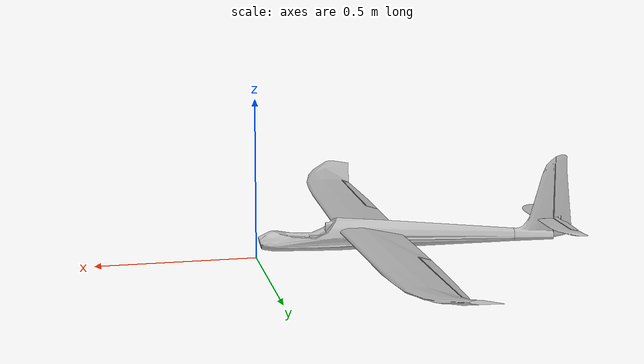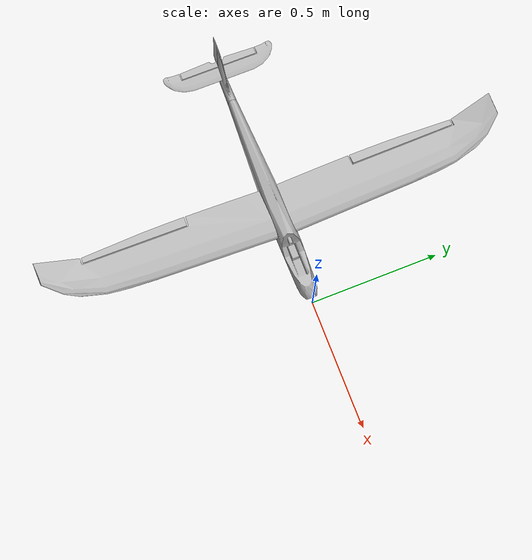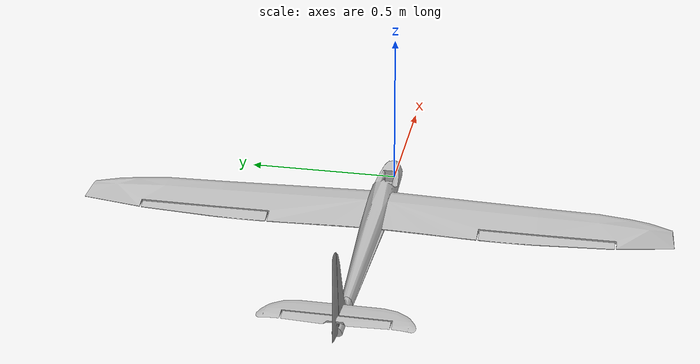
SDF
<?xml version="1.0" ?>
<sdf version="1.5">
    <model name="SUAV_glider">

        <pose>0 0 0.06 0 0 0</pose>

        <link name="fuselage">
            <inertial>
                <mass>0.278</mass>
                <inertia>
                    <ixx>0.0002467</ixx>
                    <ixy>0.0</ixy>
                    <iyy>0.011</iyy>
                    <ixz>-0.0001833</ixz>
                    <iyz>0.0</iyz>
                    <izz>0.011</izz>
                </inertia>
                <pose>-0.391 0 -0.009 0 0 0</pose>
                <!-- todo: pose of Fuselage -->
            </inertial>

            <collision name="collision">
                <geometry>
                    <mesh>
                        <uri>model://glider/meshes/Fuselage.dae</uri>
                    </mesh>
                </geometry>
            </collision>

            <visual name="visual">
                <geometry>
                    <mesh>
                        <uri>model://glider/meshes/Fuselage.dae</uri>
                    </mesh>
                </geometry>
            </visual>

            <sensor type="imu" name="IMU_Fuselage">
                <always_on>true</always_on>
                <update_rate>10</update_rate>
                <frame name="IMU_frame">
                    <pose>3.14159 0 0 0 0 0</pose>
                </frame>
            </sensor>

            <!-- Debug - Centers of pressure -->

        </link>

        <link name="left_wing">
            <inertial>
                <mass>0.144</mass>
                <inertia>
                    <ixx>0.008</ixx>
                    <ixy>0.0002962</ixy>
                    <iyy>0.0003079</iyy>
                    <ixz>-0.00001643</ixz>
                    <izz>0.008</izz>
                    <iyz>-0.00009843</iyz>
                </inertia>
                <pose>-0.357 0.412 0.015 0 0 0</pose>
<!--                Todo: Pose left Wing-->
            </inertial>

            <collision name="collision">
                <geometry>
                    <mesh>
                        <uri>model://glider/meshes/LeftWing.dae</uri>
                    </mesh>
                </geometry>
            </collision>

            <visual name="visual">
                <geometry>
                    <mesh>
                        <uri>model://glider/meshes/LeftWing.dae</uri>
                    </mesh>
                </geometry>
            </visual>

        </link>

        <link name="right_wing">

            <inertial>
                <mass>0.144</mass>
                <inertia>
                    <ixx>0.008</ixx>
                    <ixy>-0.0002962</ixy>
                    <iyy>0.0003079</iyy>
                    <ixz>-0.00001643</ixz>
                    <izz>0.008</izz>
                    <iyz>0.00009843</iyz>
                </inertia>
                <pose>-0.357 -0.412 0.015 0 0 0</pose>
            </inertial>

            <collision name="collision">
                <geometry>
                    <mesh>
                        <uri>model://glider/meshes/RightWing.dae</uri>
                    </mesh>
                </geometry>
            </collision>

            <visual name="visual">
                <geometry>
                    <mesh>
                        <uri>model://glider/meshes/RightWing.dae</uri>
                    </mesh>
                </geometry>
            </visual>

        </link>

        <link name="left_aileron">

            <inertial>
                <mass>0.007</mass>
                <inertia>
                    <ixx>0.00008872</ixx>
                    <ixy>-0.0000003134</ixy>
                    <iyy>0.0000006893</iyy>
                    <ixz>-0.0000001392</ixz>
                    <izz>0.0000892</izz>
                    <iyz>-0.0000007497</iyz>
                </inertia>
                <pose>-0.447 0.505 0 0 0 0</pose>
            </inertial>

            <collision name="collision">
                <geometry>
                    <mesh>
                        <uri>model://glider/meshes/LeftAileron.dae</uri>
                    </mesh>
                </geometry>
            </collision>

            <visual name="visual">
                <geometry>
                    <mesh>
                        <uri>model://glider/meshes/LeftAileron.dae</uri>
                    </mesh>
                </geometry>
            </visual>

        </link>

        <link name="right_aileron">

            <inertial>
                <mass>0.007</mass>
                <inertia>
                    <ixx>0.00008872</ixx>
                    <ixy>0.0000003134</ixy>
                    <iyy>0.0000006893</iyy>
                    <ixz>-0.0000001392</ixz>
                    <izz>0.0000892</izz>
                    <iyz>0.0000007497</iyz>
                </inertia>
                <pose>-0.447 -0.505 0 0 0 0</pose>
            </inertial>

            <collision name="collision">
                <geometry>
                    <mesh>
                        <uri>model://glider/meshes/RightAileron.dae</uri>
                    </mesh>
                </geometry>
            </collision>

            <visual name="visual">
                <geometry>
                    <mesh>
                        <uri>model://glider/meshes/RightAileron.dae</uri>
                    </mesh>
                </geometry>
            </visual>

        </link>

        <link name="elevator">

            <inertial>
                <mass>0.006</mass>
                <inertia>
                    <ixx>0.00004168</ixx>
                    <ixy>0.0</ixy>
                    <iyy>0.0000003395</iyy>
                    <ixz>-0.00000002188</ixz>
                    <izz>0.00004197</izz>
                    <iyz>0.0</iyz>
                </inertia>
                <pose>-0.99 0 0.015 0 0 0</pose>
            </inertial>

            <collision name="collision">
                <geometry>
                    <mesh>
                        <uri>model://glider/meshes/Elevator.dae</uri>
                    </mesh>
                </geometry>
            </collision>

            <visual name="visual">
                <geometry>
                    <mesh>
                        <uri>model://glider/meshes/Elevator.dae</uri>
                    </mesh>
                </geometry>
            </visual>

        </link>

        <link name="rudder">

            <inertial>
                <mass>0.011</mass>
                <inertia>
                    <ixx>0.00005019</ixx>
                    <ixy>0.0</ixy>
                    <iyy>0.00005215</iyy>
                    <ixz>-0.000001705</ixz>
                    <izz>0.000002054</izz>
                    <iyz>0.0</iyz>
                </inertia>
                <pose>-0.998 0 0.084 0 0 0</pose>
            </inertial>

            <collision name="collision">
                <geometry>
                    <mesh>
                        <uri>model://glider/meshes/Rudder.dae</uri>
                    </mesh>
                </geometry>
            </collision>

            <visual name="visual">
                <geometry>
                    <mesh>
                        <uri>model://glider/meshes/Rudder.dae</uri>
                    </mesh>
                </geometry>
            </visual>

        </link>

        <link name="battery">

            <inertial>
                <mass>0.15</mass>
                <inertia>
                    <ixx>0.00001982</ixx>
                    <ixy>0.0</ixy>
                    <iyy>0.00008976</iyy>
                    <ixz>0</ixz>
                    <izz>0.00008764</izz>
                    <iyz>0.0</iyz>
                </inertia>
                <pose>-0.21 0 -0.013 0 0 0</pose>
            </inertial>

            <collision name="collision">
                <geometry>
                    <mesh>
                        <uri>model://glider/meshes/Battery.dae</uri>
                    </mesh>
                </geometry>
            </collision>

            <visual name="visual">
                <geometry>
                    <mesh>
                        <uri>model://glider/meshes/Battery.dae</uri>
                    </mesh>
                </geometry>
            </visual>

        </link>

        <link name="vertical_stab">

            <inertial>
                <mass>0.024</mass>
                <inertia>
                    <ixx>0.00009841</ixx>
                    <ixy>0.0</ixy>
                    <iyy>0.0001291</iyy>
                    <ixz>0.0000281</ixz>
                    <izz>0.00003255</izz>
                    <iyz>0.0</iyz>
                </inertia>
                <pose>-0.922 0 0.02 0 0 0</pose>
            </inertial>

            <collision name="collision">
                <geometry>
                    <mesh>
                        <uri>model://glider/meshes/VerticalStab.dae</uri>
                    </mesh>
                </geometry>
            </collision>

            <visual name="visual">
                <geometry>
                    <mesh>
                        <uri>model://glider/meshes/VerticalStab.dae</uri>
                    </mesh>
                </geometry>
            </visual>

        </link>

        <link name="horizontal_stab">

            <inertial>
                <mass>0.017</mass>
                <inertia>
                    <ixx>0.000258</ixx>
                    <ixy>-0.000000002606</ixy>
                    <iyy>0.000005753</iyy>
                    <ixz>-0.0000003871</ixz>
                    <izz>0.0002635</izz>
                    <iyz>0.0</iyz>
                </inertia>
                                <pose>-0.957 0 0.018 0 0 0</pose>
            </inertial>

            <collision name="collision">
                <geometry>
                    <mesh>
                        <uri>model://glider/meshes/HorizontalStab.dae</uri>
                    </mesh>
                </geometry>
            </collision>

            <visual name="visual">
                <geometry>
                    <mesh>
                        <uri>model://glider/meshes/HorizontalStab.dae</uri>
                    </mesh>
                </geometry>
            </visual>

        </link>

        <!-- Joint to fix Left Wing to Fuselage -->
        <joint name='leftWing_fix' type='fixed'>
            <parent>fuselage</parent>
            <child>left_wing</child>
        </joint>

        <!-- Joint to fix Right Wing to Fuselage -->
        <joint name='rightWing_fix' type='fixed'>
            <parent>fuselage</parent>
            <child>right_wing</child>
        </joint>

        <!-- Joint to fix vertical Stabilizer to Fuselage -->
        <joint name='verticalStab_fix' type='fixed'>
            <parent>fuselage</parent>
            <child>vertical_stab</child>
        </joint>

        <!-- Joint to fix horizontal Stabilizer to Fuselage -->
        <joint name='horizStab_fix' type='fixed'>
            <parent>fuselage</parent>
            <child>horizontal_stab</child>
        </joint>

        <!-- Joint to fix horizontal Stabilizer to Fuselage -->
        <joint name='battery_fix' type='fixed'>
            <parent>fuselage</parent>
            <child>battery</child>
        </joint>

        <!-- Joint to move the left aileron -->
        <joint name='left_aileron_joint' type='revolute'>
            <parent>fuselage</parent>
            <child>left_aileron</child>
            <pose>-0.430535 0.336373 0.003041 0 0 0</pose>
            <axis>
                <xyz>0.009390997635938725 -0.9998917482902826 -0.011326997148576077</xyz>
                <limit>
                    <!-- -30/+30 deg. -->
                    <lower>-0.53</lower>
                    <upper>0.53</upper>
                    <effort>-1</effort>
                    <velocity>-1</velocity>
                </limit>
                <dynamics>
                    <damping>0.01000</damping>
                </dynamics>
            </axis>
            <physics>
                <ode>
                    <implicit_spring_damper>1</implicit_spring_damper>
                </ode>
            </physics>
        </joint>

        <!-- Joint to move the right aileron -->
        <joint name='right_aileron_joint' type='revolute'>
            <parent>fuselage</parent>
            <child>right_aileron</child>
            <pose>-0.430535 -0.336373 0.003041 0 0 0</pose>
            <axis>
                <xyz>0.009390997635938725 0.9998917482902826 -0.011326997148576077</xyz>
                <limit>
                    <!-- -30/+30 deg. -->
                    <lower>-0.53</lower>
                    <upper>0.53</upper>
                    <effort>-1</effort>
                    <velocity>-1</velocity>
                </limit>
                <dynamics>
                    <damping>0.01000</damping>
                </dynamics>
            </axis>
            <physics>
                <ode>
                    <implicit_spring_damper>1</implicit_spring_damper>
                </ode>
            </physics>
        </joint>

        <!-- Joint to move the elevator -->
        <joint name='elevator_joint' type='revolute'>
            <parent>fuselage</parent>
            <child>elevator</child>
            <pose>-0.976932 -0.151331 0.015941 0 0 0</pose>
            <axis>
                <xyz>0 1 0</xyz>
                <limit>
                    <!-- -30/+30 deg. -->
                    <lower>-0.349</lower>
                    <upper>0.349</upper>
                    <effort>-1</effort>
                    <velocity>-1</velocity>
                </limit>
                <dynamics>
                    <damping>0.01000</damping>
                </dynamics>
            </axis>
            <physics>
                <ode>
                    <implicit_spring_damper>1</implicit_spring_damper>
                </ode>
            </physics>
        </joint>

        <!-- Joint to move the rudder -->
        <joint name='rudder_joint' type='revolute'>
            <parent>fuselage</parent>
            <child>rudder</child>
            <pose> -0.976305 0 0.223558 0 0 0 </pose>
            <axis>
                <xyz>0 0 1</xyz>
                <limit>
                    <!-- -30/+30 deg. -->
                    <lower>-0.53</lower>
                    <upper>0.53</upper>
                    <effort>-1</effort>
                    <velocity>-1</velocity>
                </limit>
                <dynamics>
                    <damping>0.01000</damping>
                </dynamics>
            </axis>
            <physics>
                <ode>
                    <implicit_spring_damper>1</implicit_spring_damper>
                </ode>
            </physics>
        </joint>

        <plugin name="GliderPlugin" filename="cmake-build-debug/libglider.so">
            <initial_vel>15 0 0</initial_vel>
        </plugin>

    </model>
</sdf>
